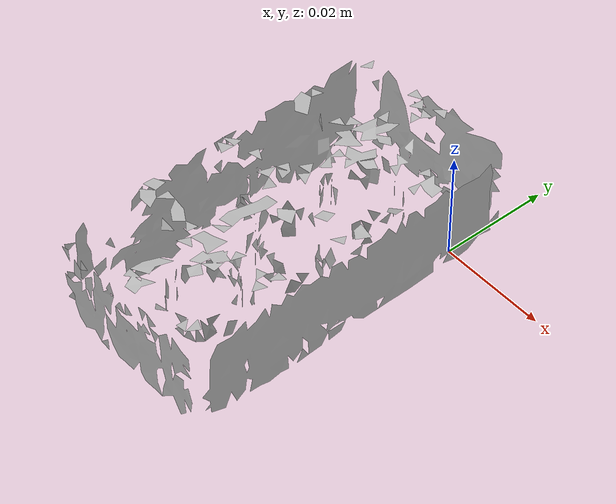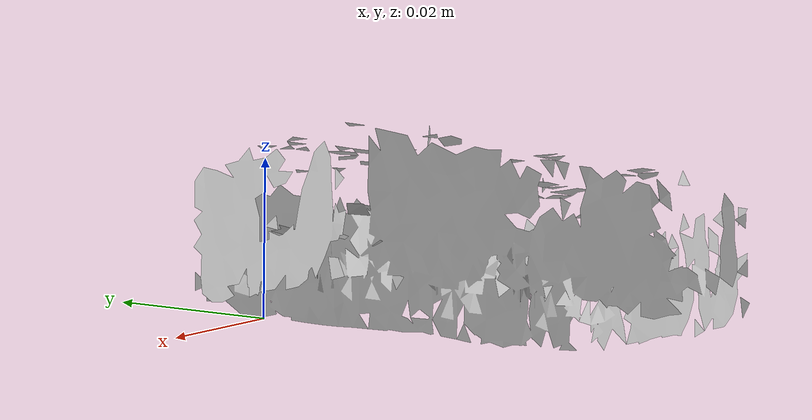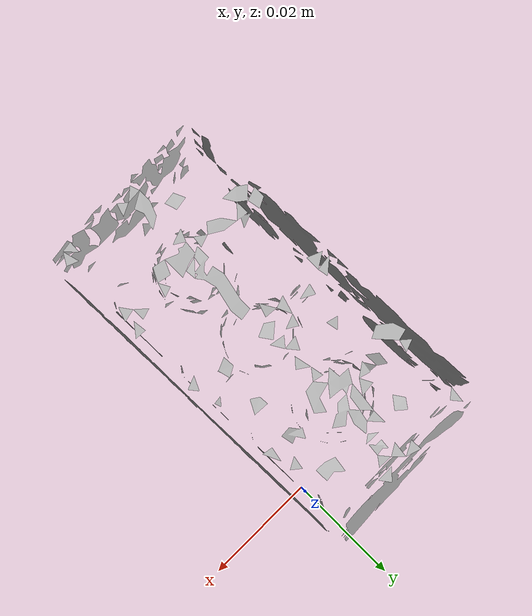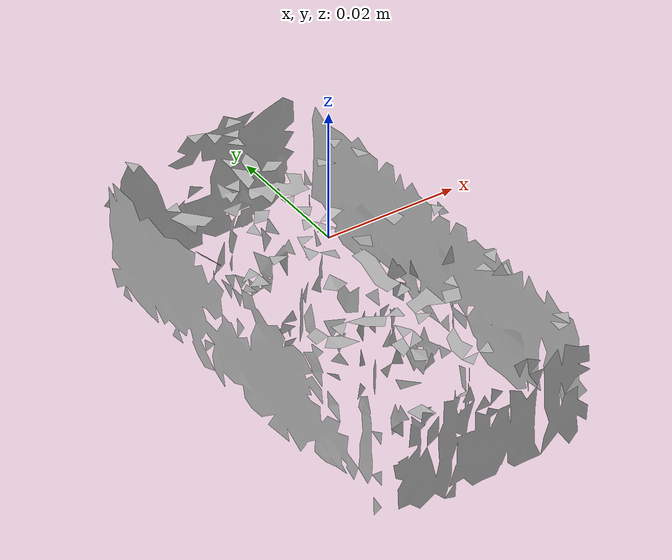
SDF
<?xml version="1.0" ?>
<sdf version="1.4">
  <model name='ycb_073-c_lego_duplo'>
    <link name='body'>
      <inertial>
        <mass>0.032095600071</mass>
        <pose>-0.0131733491379 -0.0228508988892 0.0126721195992 0 0 0</pose>
        <inertia>
          <ixx>1.2373723439e-05</ixx>
          <ixy>2.66174367306e-07</ixy>
          <ixz>1.58415478809e-08</ixz>
          <iyy>3.82906172915e-06</iyy>
          <iyz>7.28354123257e-09</iyz>
          <izz>1.4600683498e-05</izz>
        </inertia>
      </inertial>
      <visual name='ycb_073-c_lego_duplo_visual'>
        <pose>0 0 0 0 0 0</pose>
        <geometry>
          <mesh>
            <uri>model://ycb_073-c_lego_duplo/meshes/textured.dae</uri>
          </mesh>
        </geometry>
      </visual>
      <collision name='ycb_073-c_lego_duplo_collision'>
        <pose>0 0 0 0 0 0</pose>
        <geometry>
          <mesh>
            <uri>model://ycb_073-c_lego_duplo/meshes/nontextured.stl</uri>
          </mesh>
        </geometry>
        <max_contacts>10</max_contacts>
      </collision>
    </link>
  </model>
</sdf>
